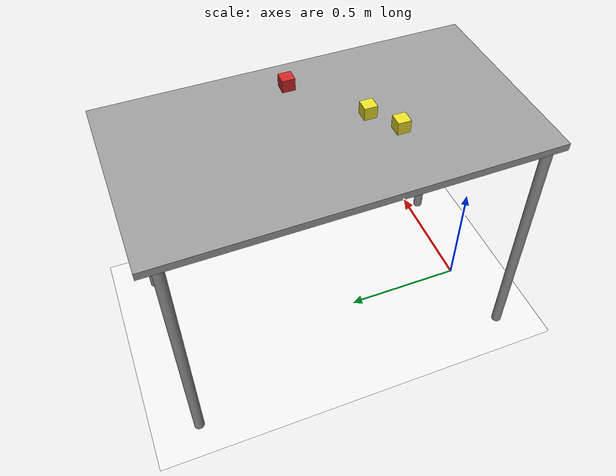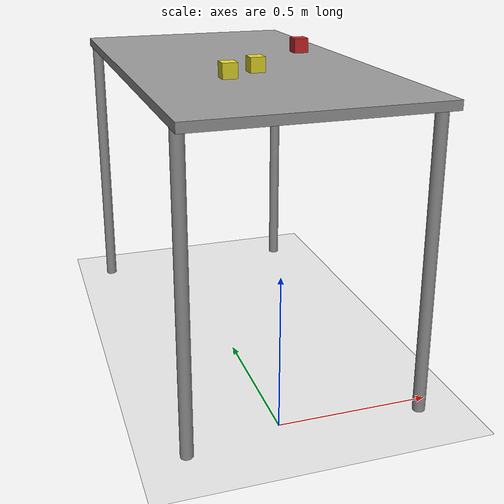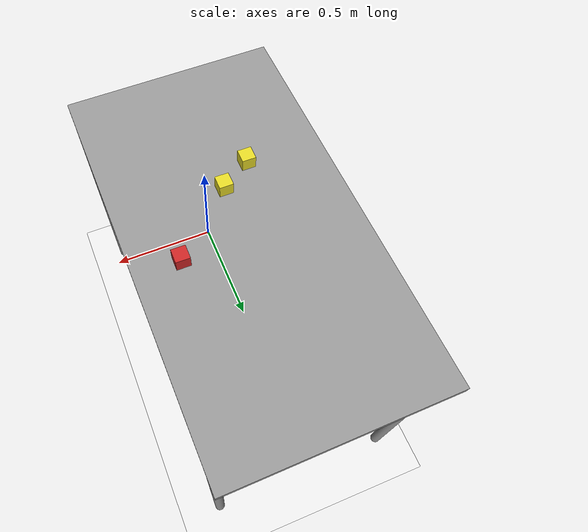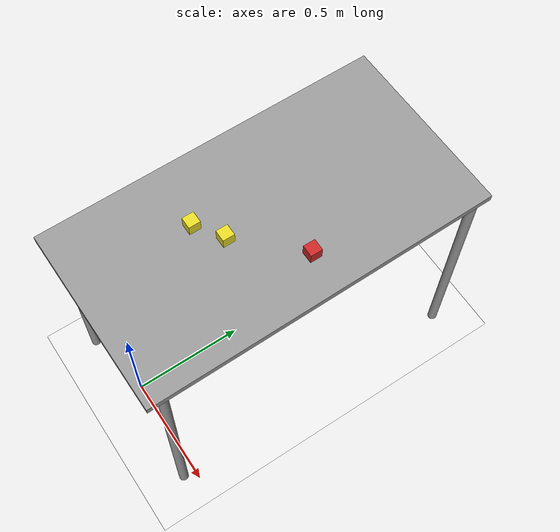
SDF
<sdf version="1.7">
 <world name="default">
  <plugin name="ros_link_attacher_plugin" filename="libgazebo_ros_link_attacher.so"/>
  <light name="sun" type="directional">
   <pose>0 0 10 0 -0 0</pose>
   <diffuse>0.8 0.8 0.8 1</diffuse>
   <specular>0.2 0.2 0.2 1</specular>
   <attenuation>
    <range>1000</range>
    <constant>0.9</constant>
    <linear>0.01</linear>
    <quadratic>0.001</quadratic>
   </attenuation>
   <direction>-0.5 0.1 -0.9</direction>
   <spot><inner_angle>0</inner_angle><outer_angle>0</outer_angle><falloff>0</falloff></spot>
  </light>
  <model name="ground_plane">
   <static>1</static>
   <link name="link">
    <collision name="collision">
     <geometry><plane><normal>0 0 1</normal><size>100 100</size></plane></geometry>
     <surface><friction><ode><mu>100</mu><mu2>50</mu2></ode></friction></surface>
    </collision>
    <visual name="visual">
     <cast_shadows>0</cast_shadows>
     <geometry><plane><normal>0 0 1</normal><size>100 100</size></plane></geometry>
     <material>
      <script><uri>file://media/materials/scripts/gazebo.material</uri><name>Gazebo/White</name></script>
     </material>
    </visual>
   </link>
  </model>
  <gravity>0 0 -9.8</gravity>
  <magnetic_field>6e-06 2.3e-05 -4.2e-05</magnetic_field>
  <atmosphere type="adiabatic"/>
  <physics type="ode">
   <max_step_size>0.001</max_step_size>
   <real_time_factor>1</real_time_factor>
   <real_time_update_rate>1000</real_time_update_rate>
  </physics>
  <scene><ambient>0.4 0.4 0.4 1</ambient><background>0.7 0.7 0.7 1</background><shadows>0</shadows></scene>
  <spherical_coordinates>
   <surface_model>EARTH_WGS84</surface_model>
   <latitude_deg>0</latitude_deg>
   <longitude_deg>0</longitude_deg>
   <elevation>0</elevation>
   <heading_deg>0</heading_deg>
  </spherical_coordinates>
  <model name="table">
   <link name="link">
    <inertial>
     <mass>1</mass>
     <inertia><ixx>1</ixx><ixy>0</ixy><ixz>0</ixz><iyy>1</iyy><iyz>0</iyz><izz>1</izz></inertia>
    </inertial>
    <visual name="visual1">
     <pose>0 0 1 0 -0 0</pose>
     <geometry><box><size>1.5 0.8 0.03</size></box></geometry>
     <material>
      <script><uri>file://media/materials/scripts/gazebo.material</uri><name>Gazebo/Grey</name></script>
      <shader type="pixel"><normal_map>__default__</normal_map></shader>
      <ambient>0.3 0.3 0.3 1</ambient>
      <diffuse>0.7 0.7 0.7 1</diffuse>
      <specular>0.01 0.01 0.01 1</specular>
      <emissive>0 0 0 1</emissive>
     </material>
    </visual>
    <visual name="front_left_leg">
     <pose>0.68 0.38 0.5 0 -0 0</pose>
     <geometry><cylinder><radius>0.02</radius><length>1</length></cylinder></geometry>
     <material>
      <script><uri>file://media/materials/scripts/gazebo.material</uri><name>Gazebo/Grey</name></script>
      <shader type="pixel"><normal_map>__default__</normal_map></shader>
      <ambient>0.3 0.3 0.3 1</ambient>
      <diffuse>0.7 0.7 0.7 1</diffuse>
      <specular>0.01 0.01 0.01 1</specular>
      <emissive>0 0 0 1</emissive>
     </material>
    </visual>
    <visual name="front_right_leg">
     <pose>0.68 -0.38 0.5 0 -0 0</pose>
     <geometry><cylinder><radius>0.02</radius><length>1</length></cylinder></geometry>
     <material>
      <script><uri>file://media/materials/scripts/gazebo.material</uri><name>Gazebo/Grey</name></script>
      <shader type="pixel"><normal_map>__default__</normal_map></shader>
      <ambient>0.3 0.3 0.3 1</ambient>
      <diffuse>0.7 0.7 0.7 1</diffuse>
      <specular>0.01 0.01 0.01 1</specular>
      <emissive>0 0 0 1</emissive>
     </material>
    </visual>
    <visual name="back_right_leg">
     <pose>-0.68 -0.38 0.5 0 -0 0</pose>
     <geometry><cylinder><radius>0.02</radius><length>1</length></cylinder></geometry>
     <material>
      <script><uri>file://media/materials/scripts/gazebo.material</uri><name>Gazebo/Grey</name></script>
      <shader type="pixel"><normal_map>__default__</normal_map></shader>
      <ambient>0.3 0.3 0.3 1</ambient>
      <diffuse>0.7 0.7 0.7 1</diffuse>
      <specular>0.01 0.01 0.01 1</specular>
      <emissive>0 0 0 1</emissive>
     </material>
    </visual>
    <visual name="back_left_leg">
     <pose>-0.68 0.38 0.5 0 -0 0</pose>
     <geometry><cylinder><radius>0.02</radius><length>1</length></cylinder></geometry>
     <material>
      <script><uri>file://media/materials/scripts/gazebo.material</uri><name>Gazebo/Grey</name></script>
      <shader type="pixel"><normal_map>__default__</normal_map></shader>
      <ambient>0.3 0.3 0.3 1</ambient>
      <diffuse>0.7 0.7 0.7 1</diffuse>
      <specular>0.01 0.01 0.01 1</specular>
      <emissive>0 0 0 1</emissive>
     </material>
    </visual>
    <collision name="surface">
     <pose>0 0 1 0 -0 0</pose>
     <geometry><box><size>1.5 0.8 0.03</size></box></geometry>
     <surface>
      <friction>
       <ode><mu>0.6</mu><mu2>0.6</mu2><fdir1>0 0 0</fdir1><slip1>0</slip1><slip2>0</slip2></ode>
       <torsional>
        <coefficient>1</coefficient>
        <patch_radius>0</patch_radius>
        <surface_radius>0</surface_radius>
        <use_patch_radius>1</use_patch_radius>
        <ode><slip>0</slip></ode>
       </torsional>
      </friction>
      <bounce><restitution_coefficient>0</restitution_coefficient><threshold>1e+06</threshold></bounce>
      <contact>
       <collide_without_contact>0</collide_without_contact>
       <collide_without_contact_bitmask>1</collide_without_contact_bitmask>
       <collide_bitmask>1</collide_bitmask>
       <ode>
        <soft_cfm>0</soft_cfm>
        <soft_erp>0.2</soft_erp>
        <kp>1e+13</kp>
        <kd>1</kd>
        <max_vel>0.01</max_vel>
        <min_depth>0</min_depth>
       </ode>
       <bullet>
        <split_impulse>1</split_impulse>
        <split_impulse_penetration_threshold>-0.01</split_impulse_penetration_threshold>
        <soft_cfm>0</soft_cfm>
        <soft_erp>0.2</soft_erp>
        <kp>1e+13</kp>
        <kd>1</kd>
       </bullet>
      </contact>
     </surface>
    </collision>
    <collision name="front_left_leg">
     <pose>0.68 0.38 0.5 0 -0 0</pose>
     <geometry><cylinder><radius>0.02</radius><length>1</length></cylinder></geometry>
     <surface>
      <friction>
       <ode><mu>1</mu><mu2>1</mu2><fdir1>0 0 0</fdir1><slip1>0</slip1><slip2>0</slip2></ode>
       <torsional>
        <coefficient>1</coefficient>
        <patch_radius>0</patch_radius>
        <surface_radius>0</surface_radius>
        <use_patch_radius>1</use_patch_radius>
        <ode><slip>0</slip></ode>
       </torsional>
      </friction>
      <bounce><restitution_coefficient>0</restitution_coefficient><threshold>1e+06</threshold></bounce>
      <contact>
       <collide_without_contact>0</collide_without_contact>
       <collide_without_contact_bitmask>1</collide_without_contact_bitmask>
       <collide_bitmask>1</collide_bitmask>
       <ode>
        <soft_cfm>0</soft_cfm>
        <soft_erp>0.2</soft_erp>
        <kp>1e+13</kp>
        <kd>1</kd>
        <max_vel>0.01</max_vel>
        <min_depth>0</min_depth>
       </ode>
       <bullet>
        <split_impulse>1</split_impulse>
        <split_impulse_penetration_threshold>-0.01</split_impulse_penetration_threshold>
        <soft_cfm>0</soft_cfm>
        <soft_erp>0.2</soft_erp>
        <kp>1e+13</kp>
        <kd>1</kd>
       </bullet>
      </contact>
     </surface>
    </collision>
    <collision name="front_right_leg">
     <pose>0.68 -0.38 0.5 0 -0 0</pose>
     <geometry><cylinder><radius>0.02</radius><length>1</length></cylinder></geometry>
     <surface>
      <friction>
       <ode><mu>1</mu><mu2>1</mu2><fdir1>0 0 0</fdir1><slip1>0</slip1><slip2>0</slip2></ode>
       <torsional>
        <coefficient>1</coefficient>
        <patch_radius>0</patch_radius>
        <surface_radius>0</surface_radius>
        <use_patch_radius>1</use_patch_radius>
        <ode><slip>0</slip></ode>
       </torsional>
      </friction>
      <bounce><restitution_coefficient>0</restitution_coefficient><threshold>1e+06</threshold></bounce>
      <contact>
       <collide_without_contact>0</collide_without_contact>
       <collide_without_contact_bitmask>1</collide_without_contact_bitmask>
       <collide_bitmask>1</collide_bitmask>
       <ode>
        <soft_cfm>0</soft_cfm>
        <soft_erp>0.2</soft_erp>
        <kp>1e+13</kp>
        <kd>1</kd>
        <max_vel>0.01</max_vel>
        <min_depth>0</min_depth>
       </ode>
       <bullet>
        <split_impulse>1</split_impulse>
        <split_impulse_penetration_threshold>-0.01</split_impulse_penetration_threshold>
        <soft_cfm>0</soft_cfm>
        <soft_erp>0.2</soft_erp>
        <kp>1e+13</kp>
        <kd>1</kd>
       </bullet>
      </contact>
     </surface>
    </collision>
    <collision name="back_right_leg">
     <pose>-0.68 -0.38 0.5 0 -0 0</pose>
     <geometry><cylinder><radius>0.02</radius><length>1</length></cylinder></geometry>
     <surface>
      <friction>
       <ode><mu>1</mu><mu2>1</mu2><fdir1>0 0 0</fdir1><slip1>0</slip1><slip2>0</slip2></ode>
       <torsional>
        <coefficient>1</coefficient>
        <patch_radius>0</patch_radius>
        <surface_radius>0</surface_radius>
        <use_patch_radius>1</use_patch_radius>
        <ode><slip>0</slip></ode>
       </torsional>
      </friction>
      <bounce><restitution_coefficient>0</restitution_coefficient><threshold>1e+06</threshold></bounce>
      <contact>
       <collide_without_contact>0</collide_without_contact>
       <collide_without_contact_bitmask>1</collide_without_contact_bitmask>
       <collide_bitmask>1</collide_bitmask>
       <ode>
        <soft_cfm>0</soft_cfm>
        <soft_erp>0.2</soft_erp>
        <kp>1e+13</kp>
        <kd>1</kd>
        <max_vel>0.01</max_vel>
        <min_depth>0</min_depth>
       </ode>
       <bullet>
        <split_impulse>1</split_impulse>
        <split_impulse_penetration_threshold>-0.01</split_impulse_penetration_threshold>
        <soft_cfm>0</soft_cfm>
        <soft_erp>0.2</soft_erp>
        <kp>1e+13</kp>
        <kd>1</kd>
       </bullet>
      </contact>
     </surface>
    </collision>
    <collision name="back_left_leg">
     <pose>-0.68 0.38 0.5 0 -0 0</pose>
     <geometry><cylinder><radius>0.02</radius><length>1</length></cylinder></geometry>
     <surface>
      <friction>
       <ode><mu>1</mu><mu2>1</mu2><fdir1>0 0 0</fdir1><slip1>0</slip1><slip2>0</slip2></ode>
       <torsional>
        <coefficient>1</coefficient>
        <patch_radius>0</patch_radius>
        <surface_radius>0</surface_radius>
        <use_patch_radius>1</use_patch_radius>
        <ode><slip>0</slip></ode>
       </torsional>
      </friction>
      <bounce><restitution_coefficient>0</restitution_coefficient><threshold>1e+06</threshold></bounce>
      <contact>
       <collide_without_contact>0</collide_without_contact>
       <collide_without_contact_bitmask>1</collide_without_contact_bitmask>
       <collide_bitmask>1</collide_bitmask>
       <ode>
        <soft_cfm>0</soft_cfm>
        <soft_erp>0.2</soft_erp>
        <kp>1e+13</kp>
        <kd>1</kd>
        <max_vel>0.01</max_vel>
        <min_depth>0</min_depth>
       </ode>
       <bullet>
        <split_impulse>1</split_impulse>
        <split_impulse_penetration_threshold>-0.01</split_impulse_penetration_threshold>
        <soft_cfm>0</soft_cfm>
        <soft_erp>0.2</soft_erp>
        <kp>1e+13</kp>
        <kd>1</kd>
       </bullet>
      </contact>
     </surface>
    </collision>
   </link>
   <static>1</static>
   <pose>0.066236 0.624371 0 0 -0 1.58194</pose>
  </model>
  <model name="yellow_box">
   <link name="link">
    <inertial>
     <mass>1</mass>
     <inertia>
      <ixx>0.166667</ixx>
      <ixy>0</ixy>
      <ixz>0</ixz>
      <iyy>0.166667</iyy>
      <iyz>0</iyz>
      <izz>0.166667</izz>
     </inertia>
    </inertial>
    <visual name="visual">
     <geometry><box><size>0.05 0.05 0.05</size></box></geometry>
     <material>
      <script><name>Gazebo/Yellow</name><uri>file://media/materials/scripts/gazebo.material</uri></script>
      <shader type="pixel"><normal_map>__default__</normal_map></shader>
      <ambient>1 1 0 1</ambient>
      <diffuse>1 1 0 1</diffuse>
      <specular>0 0 0 1</specular>
      <emissive>0 0 0 1</emissive>
     </material>
    </visual>
    <collision name="collision">
     <geometry><box><size>0.05 0.05 0.05</size></box></geometry>
     <surface>
      <friction>
       <ode><mu>1</mu><mu2>1</mu2><fdir1>0 0 0</fdir1><slip1>0</slip1><slip2>0</slip2></ode>
       <torsional>
        <coefficient>1</coefficient>
        <patch_radius>0</patch_radius>
        <surface_radius>0</surface_radius>
        <use_patch_radius>1</use_patch_radius>
        <ode><slip>0</slip></ode>
       </torsional>
      </friction>
      <bounce><restitution_coefficient>0</restitution_coefficient><threshold>1e+06</threshold></bounce>
      <contact>
       <collide_without_contact>0</collide_without_contact>
       <collide_without_contact_bitmask>1</collide_without_contact_bitmask>
       <collide_bitmask>1</collide_bitmask>
       <ode>
        <soft_cfm>0</soft_cfm>
        <soft_erp>0.2</soft_erp>
        <kp>1e+13</kp>
        <kd>1</kd>
        <max_vel>0.01</max_vel>
        <min_depth>0</min_depth>
       </ode>
       <bullet>
        <split_impulse>1</split_impulse>
        <split_impulse_penetration_threshold>-0.01</split_impulse_penetration_threshold>
        <soft_cfm>0</soft_cfm>
        <soft_erp>0.2</soft_erp>
        <kp>1e+13</kp>
        <kd>1</kd>
       </bullet>
      </contact>
     </surface>
    </collision>
   </link>
   <static>0</static>
   <pose>0.068211 0.449849 1.04 -3e-06 3e-06 5e-06</pose>
  </model>
  <model name="red_box">
   <link name="link">
    <inertial>
     <mass>1</mass>
     <inertia>
      <ixx>0.166667</ixx>
      <ixy>0</ixy>
      <ixz>0</ixz>
      <iyy>0.166667</iyy>
      <iyz>0</iyz>
      <izz>0.166667</izz>
     </inertia>
    </inertial>
    <visual name="visual">
     <geometry><box><size>0.05 0.05 0.05</size></box></geometry>
     <material>
      <script><name>Gazebo/Red</name><uri>file://media/materials/scripts/gazebo.material</uri></script>
      <shader type="pixel"><normal_map>__default__</normal_map></shader>
      <ambient>1 0 0 1</ambient>
      <diffuse>1 0 0 1</diffuse>
      <specular>0 0.1 0 1</specular>
      <emissive>0 0 0 1</emissive>
     </material>
    </visual>
    <collision name="collision">
     <geometry><box><size>0.05 0.05 0.05</size></box></geometry>
     <surface>
      <friction>
       <ode><mu>1</mu><mu2>1</mu2><fdir1>0 0 0</fdir1><slip1>0</slip1><slip2>0</slip2></ode>
       <torsional>
        <coefficient>1</coefficient>
        <patch_radius>0</patch_radius>
        <surface_radius>0</surface_radius>
        <use_patch_radius>1</use_patch_radius>
        <ode><slip>0</slip></ode>
       </torsional>
      </friction>
      <bounce><restitution_coefficient>0</restitution_coefficient><threshold>1e+06</threshold></bounce>
      <contact>
       <collide_without_contact>0</collide_without_contact>
       <collide_without_contact_bitmask>1</collide_without_contact_bitmask>
       <collide_bitmask>1</collide_bitmask>
       <ode>
        <soft_cfm>0</soft_cfm>
        <soft_erp>0.2</soft_erp>
        <kp>1e+13</kp>
        <kd>1</kd>
        <max_vel>0.01</max_vel>
        <min_depth>0</min_depth>
       </ode>
       <bullet>
        <split_impulse>1</split_impulse>
        <split_impulse_penetration_threshold>-0.01</split_impulse_penetration_threshold>
        <soft_cfm>0</soft_cfm>
        <soft_erp>0.2</soft_erp>
        <kp>1e+13</kp>
        <kd>1</kd>
       </bullet>
      </contact>
     </surface>
    </collision>
   </link>
   <static>1</static>
   <pose>0.300505 0.671873 1.05772 0.000577 -4e-06 -0.004196</pose>
  </model>
  <model name="yellow_box_0">
   <link name="link">
    <inertial>
     <mass>1</mass>
     <inertia>
      <ixx>0.166667</ixx>
      <ixy>0</ixy>
      <ixz>0</ixz>
      <iyy>0.166667</iyy>
      <iyz>0</iyz>
      <izz>0.166667</izz>
     </inertia>
    </inertial>
    <visual name="visual">
     <geometry><box><size>0.05 0.05 0.05</size></box></geometry>
     <material>
      <script><name>Gazebo/Yellow</name><uri>file://media/materials/scripts/gazebo.material</uri></script>
      <shader type="pixel"><normal_map>__default__</normal_map></shader>
      <ambient>1 1 0 1</ambient>
      <diffuse>1 1 0 1</diffuse>
      <specular>0 0 0 1</specular>
      <emissive>0 0 0 1</emissive>
     </material>
    </visual>
    <collision name="collision">
     <geometry><box><size>0.05 0.05 0.05</size></box></geometry>
     <surface>
      <friction>
       <ode><mu>1</mu><mu2>1</mu2><fdir1>0 0 0</fdir1><slip1>0</slip1><slip2>0</slip2></ode>
       <torsional>
        <coefficient>1</coefficient>
        <patch_radius>0</patch_radius>
        <surface_radius>0</surface_radius>
        <use_patch_radius>1</use_patch_radius>
        <ode><slip>0</slip></ode>
       </torsional>
      </friction>
      <bounce><restitution_coefficient>0</restitution_coefficient><threshold>1e+06</threshold></bounce>
      <contact>
       <collide_without_contact>0</collide_without_contact>
       <collide_without_contact_bitmask>1</collide_without_contact_bitmask>
       <collide_bitmask>1</collide_bitmask>
       <ode>
        <soft_cfm>0</soft_cfm>
        <soft_erp>0.2</soft_erp>
        <kp>1e+13</kp>
        <kd>1</kd>
        <max_vel>0.01</max_vel>
        <min_depth>0</min_depth>
       </ode>
       <bullet>
        <split_impulse>1</split_impulse>
        <split_impulse_penetration_threshold>-0.01</split_impulse_penetration_threshold>
        <soft_cfm>0</soft_cfm>
        <soft_erp>0.2</soft_erp>
        <kp>1e+13</kp>
        <kd>1</kd>
       </bullet>
      </contact>
     </surface>
    </collision>
   </link>
   <static>0</static>
   <pose>-0.044788 0.375096 1.04 1e-06 1.5e-05 6e-06</pose>
  </model>
 </world>
</sdf>
